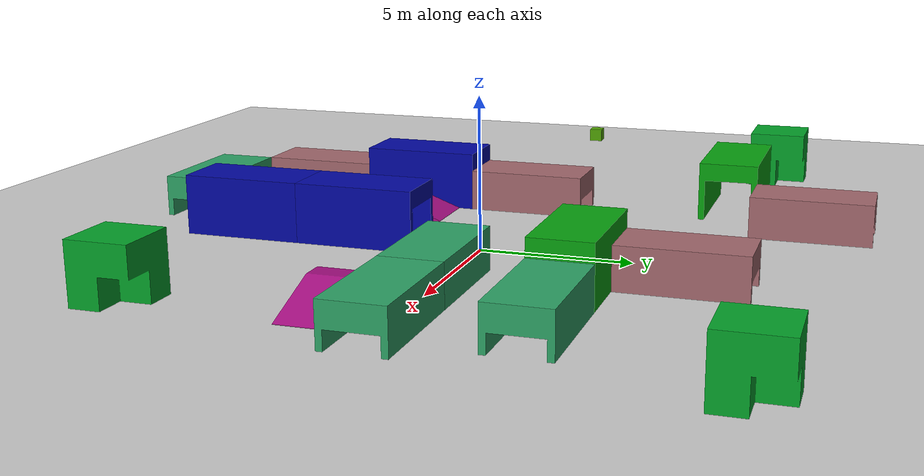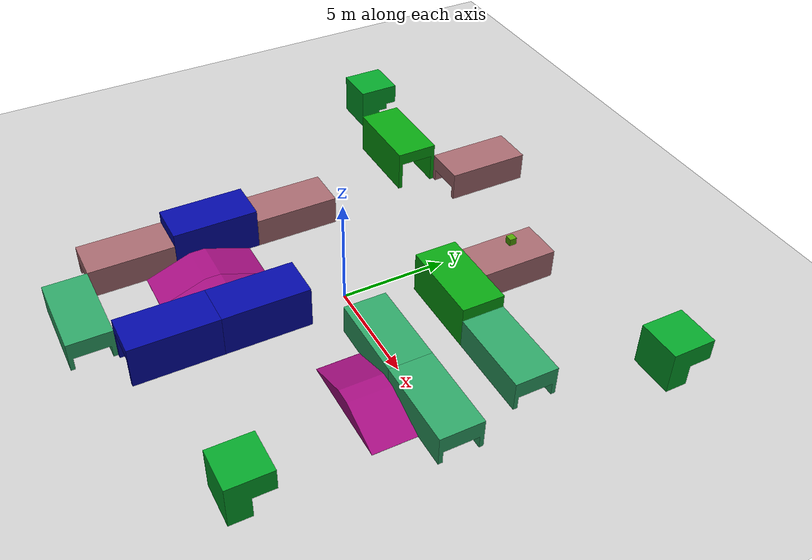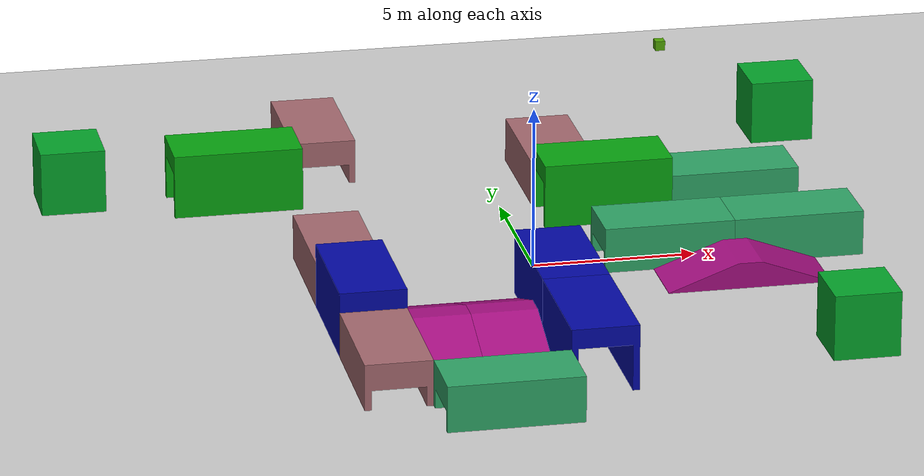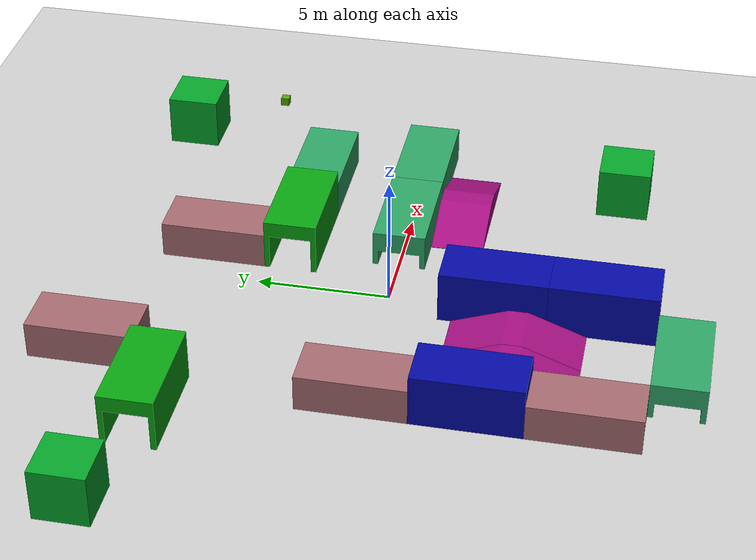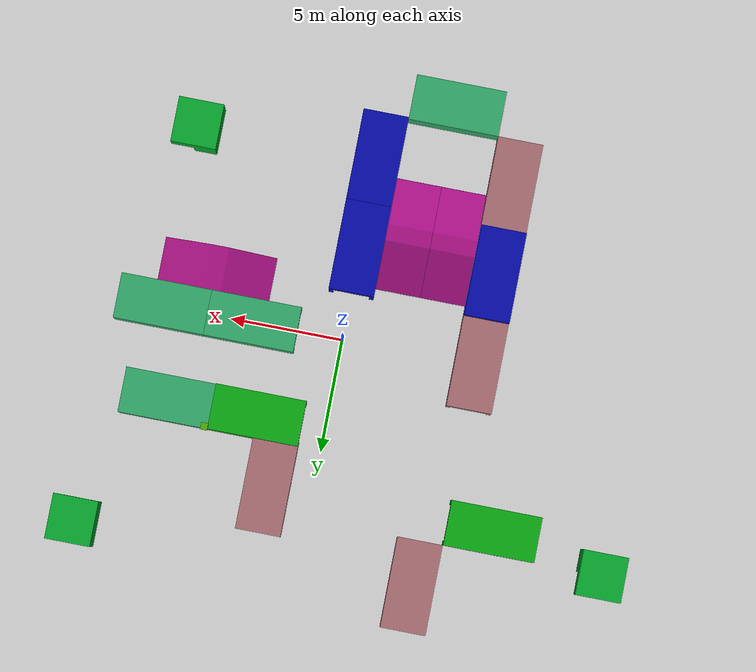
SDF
<?xml version="1.0"?>
<sdf version="1.4">

  <world name="default">
    <include>
      <uri>model://ground_plane</uri>
    </include>
    <include>
      <uri>model://sun</uri>
    </include>

    <model name="small_x_tunnel_02">
      <pose>4 0 0  0 0 0</pose>
      <static>true</static>
      <link name="body">
        <visual name="visual">
          <geometry>
            <mesh><uri>model://tunnel_x_30cm_hole_400cm_len.dae</uri></mesh>
          </geometry>
        </visual>
      </link>
    </model>

    <model name="small_x_tunnel_02">
      <pose>8 0 0  0 0 0</pose>
      <static>true</static>
      <link name="body">
        <visual name="visual">
          <geometry>
            <mesh><uri>model://tunnel_x_30cm_hole_400cm_len.dae</uri></mesh>
          </geometry>
        </visual>
      </link>
    </model>

    <model name="large_x_tunnel_01">
      <pose>3 4 0  0 0 0</pose>
      <static>true</static>
      <link name="body">
        <visual name="visual">
          <geometry>
            <mesh><uri>model://tunnel_x_70cm_hole_400cm_len.dae</uri></mesh>
          </geometry>
        </visual>
      </link>
    </model>

    <model name="small_x_tunnel_03">
      <pose>7 4 0  0 0 0</pose>
      <static>true</static>
      <link name="body">
        <visual name="visual">
          <geometry>
            <mesh><uri>model://tunnel_x_30cm_hole_400cm_len.dae</uri></mesh>
          </geometry>
        </visual>
      </link>
    </model>

    <model name="large_y_tunnel_01">
      <pose>0 -4 0  0 0 0</pose>
      <static>true</static>
      <link name="body">
        <visual name="visual">
          <geometry>
            <mesh><uri>model://tunnel_y_70cm_hole_400cm_len.dae</uri></mesh>
          </geometry>
        </visual>
      </link>
    </model>

    <model name="large_y_tunnel_02">
      <pose>0 -8 0  0 0 0</pose>
      <static>true</static>
      <link name="body">
        <visual name="visual">
          <geometry>
            <mesh><uri>model://tunnel_y_70cm_hole_400cm_len.dae</uri></mesh>
          </geometry>
        </visual>
      </link>
    </model>

    <model name="small x tunnel">
      <pose>-3 -11 0  0 0 0</pose>
      <static>true</static>
      <link name="body">
        <visual name="visual">
          <geometry>
            <mesh><uri>model://tunnel_x_30cm_hole_400cm_len.dae</uri></mesh>
          </geometry>
        </visual>
      </link>
    </model>

    <model name="small y tunnel">
      <pose>-6 -8 0  0 0 0</pose>
      <static>true</static>
      <link name="body">
        <visual name="visual">
          <geometry>
            <mesh><uri>model://tunnel_y_30cm_hole_400cm_len.dae</uri></mesh>
          </geometry>
        </visual>
      </link>
    </model>

    <model name="large y tunnel">
      <pose>-6 -4 0  0 0 0</pose>
      <static>true</static>
      <link name="body">
        <visual name="visual">
          <geometry>
            <mesh><uri>model://tunnel_y_70cm_hole_400cm_len.dae</uri></mesh>
          </geometry>
        </visual>
      </link>
    </model>

    <model name="large y tunnel">
      <pose>-6 0 0  0 0 0</pose>
      <static>true</static>
      <link name="body">
        <visual name="visual">
          <geometry>
            <mesh><uri>model://tunnel_y_30cm_hole_400cm_len.dae</uri></mesh>
          </geometry>
        </visual>
      </link>
    </model>

    <model name="large x tunnel">
      <pose>-8 7 0  0 0 0</pose>
      <static>true</static>
      <link name="body">
        <visual name="visual">
          <geometry>
            <mesh><uri>model://tunnel_x_70cm_hole_400cm_len.dae</uri></mesh>
          </geometry>
        </visual>
      </link>
    </model>

    <model name="small y tunnel">
      <pose>-5 10 0  0 0 0</pose>
      <static>true</static>
      <link name="body">
        <visual name="visual">
          <geometry>
            <mesh><uri>model://tunnel_y_30cm_hole_400cm_len.dae</uri></mesh>
          </geometry>
        </visual>
      </link>
    </model>

    <model name="small y tunnel">
      <pose>2 7 0  0 0 0</pose>
      <static>true</static>
      <link name="body">
        <visual name="visual">
          <geometry>
            <mesh><uri>model://tunnel_y_30cm_hole_400cm_len.dae</uri></mesh>
          </geometry>
        </visual>
      </link>
    </model>

    <model name="random block">
      <pose>10 10 0  0 0 0</pose>
      <static>true</static>
      <link name="body">
        <visual name="visual">
          <geometry>
            <mesh><uri>model://missing_50cm_corner.dae</uri></mesh>
          </geometry>
        </visual>
      </link>
    </model>

    <model name="random block">
      <pose>-13 8 0  0 0 0</pose>
      <static>true</static>
      <link name="body">
        <visual name="visual">
          <geometry>
            <mesh><uri>model://missing_50cm_corner.dae</uri></mesh>
          </geometry>
        </visual>
      </link>
    </model>

    <model name="random block">
      <pose>8 -8 0  0 0 0</pose>
      <static>true</static>
      <link name="body">
        <visual name="visual">
          <geometry>
            <mesh><uri>model://missing_50cm_corner.dae</uri></mesh>
          </geometry>
        </visual>
      </link>
    </model>

    <model name="ref_cube">
      <pose>5 5 5  0 0 0</pose>
      <static>true</static>
      <link name="body">
        <visual name="visual">
          <geometry>
            <mesh><uri>model://ref_cube.dae</uri></mesh>
          </geometry>
        </visual>
      </link>
    </model>

    <model name="ramp_1">
      <pose>6 -2 0  0 0 1.57079632679</pose>
      <static>true</static>
      <link name="body">
        <visual name="visual">
          <geometry>
            <mesh><uri>model://ramp_y_500cm_z_80cm.dae</uri></mesh>
          </geometry>
        </visual>
      </link>
    </model>

    <model name="ramp_2">
      <pose>-4 -5 0  0 0 0</pose>
      <static>true</static>
      <link name="body">
        <visual name="visual">
          <geometry>
            <mesh><uri>model://ramp_y_500cm_z_80cm.dae</uri></mesh>
          </geometry>
        </visual>
      </link>
    </model>

    <model name="ramp_3">
      <pose>-2 -5 0  0 0 0</pose>
      <static>true</static>
      <link name="body">
        <visual name="visual">
          <geometry>
            <mesh><uri>model://ramp_y_500cm_z_80cm.dae</uri></mesh>
          </geometry>
        </visual>
      </link>
    </model>

  </world>
</sdf>
